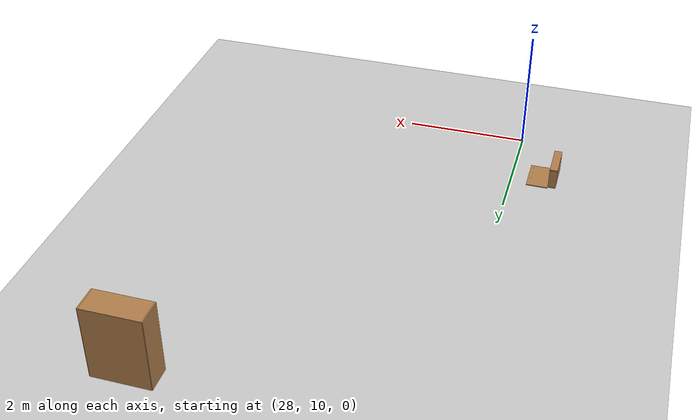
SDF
<sdf version="1.6">
 <world name="default">
  <model name="ground_plane">
   <static>1</static>
   <link name="link">
    <collision name="collision">
     <geometry><plane><normal>0 0 1</normal><size>100 100</size></plane></geometry>
     <surface><friction><ode><mu>100</mu><mu2>50</mu2></ode></friction></surface>
    </collision>
    <visual name="visual">
     <cast_shadows>0</cast_shadows>
     <geometry><plane><normal>0 0 1</normal><size>100 100</size></plane></geometry>
     <material>
      <script><uri>file://media/materials/scripts/gazebo.material</uri><name>Gazebo/Grey</name></script>
     </material>
    </visual>
   </link>
  </model>
  <model name="bookshelf_13">
   <static>1</static>
   <link name="link">
    <inertial><mass>1</mass></inertial>
    <collision name="back">
     <pose>0 0.005 0.6 0 -0 0</pose>
     <geometry><box><size>0.9 0.01 1.2</size></box></geometry>
    </collision>
    <visual name="visual1">
     <pose>0 0.005 0.6 0 -0 0</pose>
     <geometry><box><size>0.9 0.01 1.2</size></box></geometry>
     <material>
      <script><uri>file://media/materials/scripts/gazebo.material</uri><name>Gazebo/Wood</name></script>
     </material>
    </visual>
    <collision name="left_side">
     <pose>0.45 -0.195 0.6 0 -0 0</pose>
     <geometry><box><size>0.02 0.4 1.2</size></box></geometry>
    </collision>
    <visual name="visual2">
     <pose>0.45 -0.195 0.6 0 -0 0</pose>
     <geometry><box><size>0.02 0.4 1.2</size></box></geometry>
     <material>
      <script><uri>file://media/materials/scripts/gazebo.material</uri><name>Gazebo/Wood</name></script>
     </material>
    </visual>
    <collision name="right_side">
     <pose>-0.45 -0.195 0.6 0 -0 0</pose>
     <geometry><box><size>0.02 0.4 1.2</size></box></geometry>
    </collision>
    <visual name="visual3">
     <pose>-0.45 -0.195 0.6 0 -0 0</pose>
     <geometry><box><size>0.02 0.4 1.2</size></box></geometry>
     <material>
      <script><uri>file://media/materials/scripts/gazebo.material</uri><name>Gazebo/Wood</name></script>
     </material>
    </visual>
    <collision name="bottom">
     <pose>0 -0.195 0.03 0 -0 0</pose>
     <geometry><box><size>0.88 0.4 0.06</size></box></geometry>
    </collision>
    <visual name="visual4">
     <pose>0 -0.195 0.03 0 -0 0</pose>
     <geometry><box><size>0.88 0.4 0.06</size></box></geometry>
     <material>
      <script><uri>file://media/materials/scripts/gazebo.material</uri><name>Gazebo/Wood</name></script>
     </material>
    </visual>
    <collision name="top">
     <pose>0 -0.195 1.19 0 -0 0</pose>
     <geometry><box><size>0.88 0.4 0.02</size></box></geometry>
    </collision>
    <visual name="visual5">
     <pose>0 -0.195 1.19 0 -0 0</pose>
     <geometry><box><size>0.88 0.4 0.02</size></box></geometry>
     <material>
      <script><uri>file://media/materials/scripts/gazebo.material</uri><name>Gazebo/Wood</name></script>
     </material>
    </visual>
    <collision name="low_shelf">
     <pose>0 -0.195 0.43 0 -0 0</pose>
     <geometry><box><size>0.88 0.4 0.02</size></box></geometry>
    </collision>
    <visual name="visual6">
     <pose>0 -0.195 0.43 0 -0 0</pose>
     <geometry><box><size>0.88 0.4 0.02</size></box></geometry>
     <material>
      <script><uri>file://media/materials/scripts/gazebo.material</uri><name>Gazebo/Wood</name></script>
     </material>
    </visual>
    <collision name="high_shelf">
     <pose>0 -0.195 0.8 0 -0 0</pose>
     <geometry><box><size>0.88 0.4 0.02</size></box></geometry>
    </collision>
    <visual name="visual7">
     <pose>0 -0.195 0.8 0 -0 0</pose>
     <geometry><box><size>0.88 0.4 0.02</size></box></geometry>
     <material>
      <script><uri>file://media/materials/scripts/gazebo.material</uri><name>Gazebo/Wood</name></script>
     </material>
    </visual>
   </link>
   <pose>32.1184 17.3344 0 0 -0 0</pose>
  </model>
  <model name="wooden_case_0">
   <link name="base">
    <pose>0 0 0.024 0 -0 0</pose>
    <inertial>
     <pose>-0.022184 0 0.171592 0 -0 0</pose>
     <mass>3.96264</mass>
     <inertia>
      <ixx>0.213536</ixx>
      <ixy>0</ixy>
      <ixz>0.000779377</ixz>
      <iyy>0.0708943</iyy>
      <iyz>0</iyz>
      <izz>0.154604</izz>
     </inertia>
    </inertial>
    <collision name="collision_back">
     <pose>-0.053975 0 0.1778 0 -0 0</pose>
     <geometry><box><size>0.01905 0.5461 0.3175</size></box></geometry>
     <surface>
      <contact>
       <poissons_ratio>0.347</poissons_ratio>
       <elastic_modulus>8.8e+09</elastic_modulus>
       <ode><kp>100000</kp><kd>100</kd><max_vel>100</max_vel><min_depth>0.001</min_depth></ode>
      </contact>
      <friction>
       <torsional>
        <coefficient>1</coefficient>
        <use_patch_radius>0</use_patch_radius>
        <surface_radius>0.01</surface_radius>
       </torsional>
      </friction>
     </surface>
    </collision>
    <visual name="visual_back">
     <pose>-0.053975 0 0.1778 0 -0 0</pose>
     <geometry><box><size>0.01905 0.5461 0.3175</size></box></geometry>
     <material>
      <script><uri>file://media/materials/scripts/gazebo.material</uri><name>Gazebo/Wood</name></script>
     </material>
    </visual>
    <collision name="collision_bottom">
     <pose>0 0 0.009525 0 -0 0</pose>
     <geometry><box><size>0.127 0.5842 0.01905</size></box></geometry>
     <surface>
      <contact>
       <poissons_ratio>0.347</poissons_ratio>
       <elastic_modulus>8.8e+09</elastic_modulus>
       <ode><kp>100000</kp><kd>100</kd><max_vel>100</max_vel><min_depth>0.001</min_depth></ode>
      </contact>
      <friction>
       <torsional>
        <coefficient>1</coefficient>
        <use_patch_radius>0</use_patch_radius>
        <surface_radius>0.01</surface_radius>
       </torsional>
      </friction>
     </surface>
    </collision>
    <visual name="visual_bottom">
     <pose>0 0 0.009525 0 -0 0</pose>
     <geometry><box><size>0.127 0.5842 0.01905</size></box></geometry>
     <material>
      <script><uri>file://media/materials/scripts/gazebo.material</uri><name>Gazebo/Wood</name></script>
     </material>
    </visual>
    <collision name="collision_top">
     <pose>0 0 0.346075 0 -0 0</pose>
     <geometry><box><size>0.127 0.5842 0.01905</size></box></geometry>
     <surface>
      <contact>
       <poissons_ratio>0.347</poissons_ratio>
       <elastic_modulus>8.8e+09</elastic_modulus>
       <ode><kp>100000</kp><kd>100</kd><max_vel>100</max_vel><min_depth>0.001</min_depth></ode>
      </contact>
      <friction>
       <torsional>
        <coefficient>1</coefficient>
        <use_patch_radius>0</use_patch_radius>
        <surface_radius>0.01</surface_radius>
       </torsional>
      </friction>
     </surface>
    </collision>
    <visual name="visual_top">
     <pose>0 0 0.346075 0 -0 0</pose>
     <geometry><box><size>0.127 0.5842 0.01905</size></box></geometry>
     <material>
      <script><uri>file://media/materials/scripts/gazebo.material</uri><name>Gazebo/Wood</name></script>
     </material>
    </visual>
    <collision name="collision_left">
     <pose>0 -0.282575 0.1778 0 -0 0</pose>
     <geometry><box><size>0.127 0.01905 0.3175</size></box></geometry>
     <surface>
      <contact>
       <poissons_ratio>0.347</poissons_ratio>
       <elastic_modulus>8.8e+09</elastic_modulus>
       <ode><kp>100000</kp><kd>100</kd><max_vel>100</max_vel><min_depth>0.001</min_depth></ode>
      </contact>
      <friction>
       <torsional>
        <coefficient>1</coefficient>
        <use_patch_radius>0</use_patch_radius>
        <surface_radius>0.01</surface_radius>
       </torsional>
      </friction>
     </surface>
    </collision>
    <visual name="visual_left">
     <pose>0 -0.282575 0.1778 0 -0 0</pose>
     <geometry><box><size>0.127 0.01905 0.3175</size></box></geometry>
     <material>
      <script><uri>file://media/materials/scripts/gazebo.material</uri><name>Gazebo/Wood</name></script>
     </material>
    </visual>
    <collision name="collision_right">
     <pose>0 0.282575 0.1778 0 -0 0</pose>
     <geometry><box><size>0.127 0.01905 0.3175</size></box></geometry>
     <surface>
      <contact>
       <poissons_ratio>0.347</poissons_ratio>
       <elastic_modulus>8.8e+09</elastic_modulus>
       <ode><kp>100000</kp><kd>100</kd><max_vel>100</max_vel><min_depth>0.001</min_depth></ode>
      </contact>
      <friction>
       <torsional>
        <coefficient>1</coefficient>
        <use_patch_radius>0</use_patch_radius>
        <surface_radius>0.01</surface_radius>
       </torsional>
      </friction>
     </surface>
    </collision>
    <visual name="visual_right">
     <pose>0 0.282575 0.1778 0 -0 0</pose>
     <geometry><box><size>0.127 0.01905 0.3175</size></box></geometry>
     <material>
      <script><uri>file://media/materials/scripts/gazebo.material</uri><name>Gazebo/Wood</name></script>
     </material>
    </visual>
    <collision name="collision_block_left">
     <pose>0.0095 -0.2151 -0.012 0 -0 0</pose>
     <geometry><box><size>0.108 0.05 0.024</size></box></geometry>
     <surface>
      <contact>
       <poissons_ratio>0.347</poissons_ratio>
       <elastic_modulus>8.8e+09</elastic_modulus>
       <ode><kp>100000</kp><kd>100</kd><max_vel>100</max_vel><min_depth>0.001</min_depth></ode>
      </contact>
      <friction>
       <torsional>
        <coefficient>1</coefficient>
        <use_patch_radius>0</use_patch_radius>
        <surface_radius>0.01</surface_radius>
       </torsional>
      </friction>
     </surface>
    </collision>
    <visual name="visual_block_left">
     <pose>0.0095 -0.2151 -0.012 0 -0 0</pose>
     <geometry><box><size>0.108 0.05 0.024</size></box></geometry>
     <material>
      <script><uri>file://media/materials/scripts/gazebo.material</uri><name>Gazebo/Wood</name></script>
     </material>
    </visual>
    <collision name="collision_block_right">
     <pose>0.0095 0.2151 -0.012 0 -0 0</pose>
     <geometry><box><size>0.108 0.05 0.024</size></box></geometry>
     <surface>
      <contact>
       <poissons_ratio>0.347</poissons_ratio>
       <elastic_modulus>8.8e+09</elastic_modulus>
       <ode><kp>100000</kp><kd>100</kd><max_vel>100</max_vel><min_depth>0.001</min_depth></ode>
      </contact>
      <friction>
       <torsional>
        <coefficient>1</coefficient>
        <use_patch_radius>0</use_patch_radius>
        <surface_radius>0.01</surface_radius>
       </torsional>
      </friction>
     </surface>
    </collision>
    <visual name="visual_block_right">
     <pose>0.0095 0.2151 -0.012 0 -0 0</pose>
     <geometry><box><size>0.108 0.05 0.024</size></box></geometry>
     <material>
      <script><uri>file://media/materials/scripts/gazebo.material</uri><name>Gazebo/Wood</name></script>
     </material>
    </visual>
   </link>
   <link name="lid">
    <pose>0.243775 0 0.009525 0 -0 0</pose>
    <inertial>
     <mass>1.97874</mass>
     <inertia>
      <ixx>0.0563367</ixx>
      <ixy>0</ixy>
      <ixz>0</ixz>
      <iyy>0.020911</iyy>
      <iyz>0</iyz>
      <izz>0.0771281</izz>
     </inertia>
    </inertial>
    <collision name="collision">
     <geometry><box><size>0.3556 0.5842 0.01905</size></box></geometry>
     <surface>
      <contact>
       <poissons_ratio>0.347</poissons_ratio>
       <elastic_modulus>8.8e+09</elastic_modulus>
       <ode><kp>100000</kp><kd>100</kd><max_vel>100</max_vel><min_depth>0.001</min_depth></ode>
      </contact>
      <friction>
       <torsional>
        <coefficient>1</coefficient>
        <use_patch_radius>0</use_patch_radius>
        <surface_radius>0.01</surface_radius>
       </torsional>
      </friction>
     </surface>
    </collision>
    <visual name="visual">
     <geometry><box><size>0.3556 0.5842 0.01905</size></box></geometry>
     <material>
      <script><uri>file://media/materials/scripts/gazebo.material</uri><name>Gazebo/Wood</name></script>
     </material>
    </visual>
    <visual name="tee_nut_1">
     <pose>0.122 -0.216 0 0 -0 0</pose>
     <geometry><cylinder><radius>0.00635</radius><length>0.0192405</length></cylinder></geometry>
     <material>
      <script><uri>file://media/materials/scripts/gazebo.material</uri><name>Gazebo/Grey</name></script>
     </material>
    </visual>
    <visual name="tee_nut_2">
     <pose>0.122 -0.088 0 0 -0 0</pose>
     <geometry><cylinder><radius>0.00635</radius><length>0.0192405</length></cylinder></geometry>
     <material>
      <script><uri>file://media/materials/scripts/gazebo.material</uri><name>Gazebo/Grey</name></script>
     </material>
    </visual>
    <visual name="tee_nut_3">
     <pose>0.122 0.088 0 0 -0 0</pose>
     <geometry><cylinder><radius>0.00635</radius><length>0.0192405</length></cylinder></geometry>
     <material>
      <script><uri>file://media/materials/scripts/gazebo.material</uri><name>Gazebo/Grey</name></script>
     </material>
    </visual>
    <visual name="tee_nut_4">
     <pose>0.122 0.216 0 0 -0 0</pose>
     <geometry><cylinder><radius>0.00635</radius><length>0.0192405</length></cylinder></geometry>
     <material>
      <script><uri>file://media/materials/scripts/gazebo.material</uri><name>Gazebo/Grey</name></script>
     </material>
    </visual>
   </link>
   <joint name="lid_hinge" type="revolute">
    <pose>-0.1778 0 0.01905 0 -0 0</pose>
    <parent>base</parent>
    <child>lid</child>
    <axis>
     <xyz>0 1 0</xyz>
     <limit><upper>0.523599</upper><lower>-1.5708</lower></limit>
     <use_parent_model_frame>0</use_parent_model_frame>
     <dynamics><spring_reference>0</spring_reference><spring_stiffness>0</spring_stiffness></dynamics>
    </axis>
   </joint>
   <pose>27.3086 11.0281 -0.001057 0 -0.00043 0</pose>
  </model>
 </world>
</sdf>
